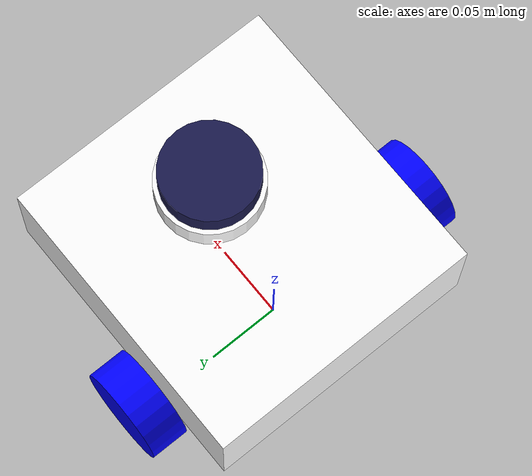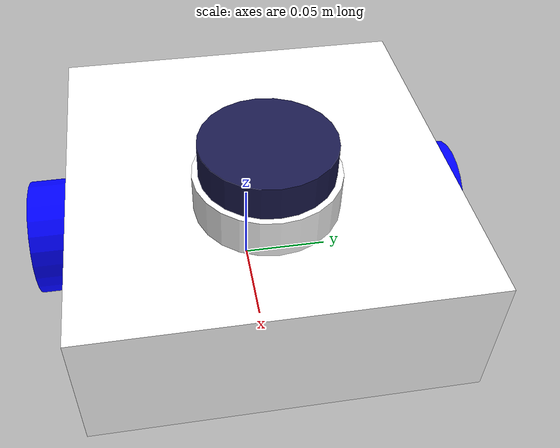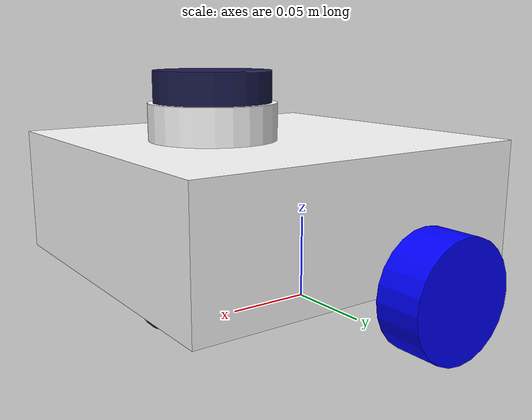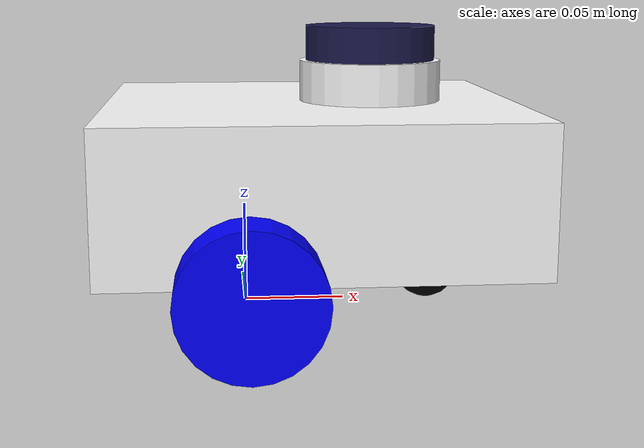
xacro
<?xml version="1.0"?>
<robot name="restaurant_robot"
       xmlns:xacro="http://www.ros.org/wiki/xacro"
       xmlns:gz="http://gazebosim.org/schema">

    <!-- Mechanical structure: chassis, wheels, caster -->
    <xacro:include filename="$(find restaurant_robot_description)/urdf/robot_core.xacro"/>

    <!-- Sensor frames: LiDAR, IMU -->
    <xacro:include filename="$(find restaurant_robot_description)/urdf/sensors.xacro"/>

    <!-- Gazebo Harmonic plugins: diff_drive, joint_states, lidar, imu -->
    <xacro:include filename="$(find restaurant_robot_description)/urdf/gazebo.xacro"/>

</robot>

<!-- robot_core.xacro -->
<robot xmlns:xacro="http://www.ros.org/wiki/xacro">

    <!-- Include inertia calculation macros -->
    <xacro:include filename="$(find restaurant_robot_description)/urdf/inertia_macros.xacro"/>

    <!-- Chassis dimensions -->
    <xacro:property name="chassis_length" value="0.20"/>
    <xacro:property name="chassis_width"  value="0.19"/>
    <xacro:property name="chassis_height" value="0.07"/>
    <xacro:property name="chassis_mass"   value="0.5"/>

    <!-- Drive wheel parameters -->
    <xacro:property name="wheel_radius"     value="0.0325"/>
    <xacro:property name="wheel_width"      value="0.026"/>
    <xacro:property name="wheel_mass"       value="0.1"/>
    <xacro:property name="wheel_separation" value="0.220"/>

    <!-- Caster wheel parameters -->
    <xacro:property name="caster_radius" value="0.0165"/>
    <xacro:property name="caster_mass"   value="0.1"/>

    <!-- ============================================================
         COLOR DEFINITIONS
         ============================================================ -->
    <material name="white">
        <color rgba="1 1 1 1"/>
    </material>
    <material name="black">
        <color rgba="0 0 0 1"/>
    </material>
    <material name="red">
        <color rgba="1 0 0 1"/>
    </material>
    <material name="green">
        <color rgba="0 1 0 1"/>
    </material>
    <material name="blue">
        <color rgba="0 0 1 1"/>
    </material>

    <link name="base_footprint">
        <inertial>
            <mass value="1e-5"/>
            <inertia ixx="1e-7" ixy="0" ixz="0" iyy="1e-7" iyz="0" izz="1e-7"/>
        </inertial>
    </link>

    <joint name="base_joint" type="fixed">
        <parent link="base_footprint"/>
        <child link="base_link"/>
        <origin xyz="0 0 ${wheel_radius}" rpy="0 0 0"/>
    </joint>
    <gazebo reference="base_joint">
        <preserveFixedJoint>true</preserveFixedJoint>
    </gazebo>

    <link name="base_link">
        <inertial>
            <mass value="1e-5"/>
            <inertia ixx="1e-7" ixy="0" ixz="0" iyy="1e-7" iyz="0" izz="1e-7"/>
        </inertial>
    </link>

    <joint name="chassis_joint" type="fixed">
        <parent link="base_link"/>
        <child link="chassis_link"/>
        <origin xyz="-0.067 0 0" rpy="0 0 0"/>
    </joint>
    <gazebo reference="chassis_joint">
        <preserveFixedJoint>true</preserveFixedJoint>
    </gazebo>

    <link name="chassis_link">
        <visual>
            <origin xyz="0.10 0 0.035"/>
            <geometry>
                <box size="${chassis_length} ${chassis_width} ${chassis_height}"/>
            </geometry>
            <material name="white"/>
        </visual>
        <collision>
            <origin xyz="0.10 0 0.035"/>
            <geometry>
                <box size="${chassis_length} ${chassis_width} ${chassis_height}"/>
            </geometry>
        </collision>
        <xacro:inertial_box mass="${chassis_mass}" x="${chassis_length}" y="${chassis_width}" z="${chassis_height}">
            <origin xyz="0.10 0 0.035" rpy="0 0 0"/>
        </xacro:inertial_box>
    </link>

    <!-- Gazebo visual material for chassis -->
    <gazebo reference="chassis_link">
        <material>
            <ambient>1 1 1 1</ambient>
            <diffuse>1 1 1 1</diffuse>
            <specular>1 1 1 1</specular>
        </material>
    </gazebo>

    <joint name="left_wheel_joint" type="continuous">
        <parent link="base_link"/>
        <child link="left_wheel"/>
        <origin xyz="0 ${wheel_separation/2} 0" rpy="-${pi/2} 0 0"/>
        <axis xyz="0 0 1"/>
        <dynamics damping="0.01" friction="0.1"/>
        <limit effort="5.0" velocity="20.0"/>
    </joint>

    <link name="left_wheel">
        <visual>
            <geometry>
                <cylinder radius="${wheel_radius}" length="${wheel_width}"/>
            </geometry>
            <material name="blue"/>
        </visual>
        <collision>
            <geometry>
                <cylinder radius="${wheel_radius}" length="${wheel_width}"/>
            </geometry>
        </collision>
        <xacro:inertial_cylinder mass="${wheel_mass}" radius="${wheel_radius}" length="${wheel_width}">
            <origin xyz="0 0 0" rpy="0 0 0"/>
        </xacro:inertial_cylinder>
    </link>

    <!-- Drive wheel surface friction (high grip for traction) -->
    <gazebo reference="left_wheel">
        <material>
            <ambient>0 0 1 1</ambient>
            <diffuse>0 0 1 1</diffuse>
        </material>
        <collision>
            <surface>
                <friction>
                    <ode>
                        <mu>1.0</mu>
                        <mu2>1.0</mu2>
                        <slip1>0.0</slip1>
                        <slip2>0.0</slip2>
                        <fdir1>0 0 1</fdir1>
                    </ode>
                </friction>
                <contact>
                    <ode>
                        <kp>1e6</kp>
                        <kd>100</kd>
                        <min_depth>0.001</min_depth>
                    </ode>
                </contact>
            </surface>
        </collision>
    </gazebo>

    <joint name="right_wheel_joint" type="continuous">
        <parent link="base_link"/>
        <child link="right_wheel"/>
        <origin xyz="0 -${wheel_separation/2} 0" rpy="${pi/2} 0 0"/>
        <axis xyz="0 0 -1"/>
        <dynamics damping="0.01" friction="0.1"/>
        <limit effort="5.0" velocity="20.0"/>
    </joint>

    <link name="right_wheel">
        <visual>
            <geometry>
                <cylinder radius="${wheel_radius}" length="${wheel_width}"/>
            </geometry>
            <material name="blue"/>
        </visual>
        <collision>
            <geometry>
                <cylinder radius="${wheel_radius}" length="${wheel_width}"/>
            </geometry>
        </collision>
        <xacro:inertial_cylinder mass="${wheel_mass}" radius="${wheel_radius}" length="${wheel_width}">
            <origin xyz="0 0 0" rpy="0 0 0"/>
        </xacro:inertial_cylinder>
    </link>

    <!-- Drive wheel surface friction (high grip for traction) -->
    <gazebo reference="right_wheel">
        <material>
            <ambient>0 0 1 1</ambient>
            <diffuse>0 0 1 1</diffuse>
        </material>
        <collision>
            <surface>
                <friction>
                    <ode>
                        <mu>1.0</mu>
                        <mu2>1.0</mu2>
                        <slip1>0.0</slip1>
                        <slip2>0.0</slip2>
                        <fdir1>0 0 1</fdir1>
                    </ode>
                </friction>
                <contact>
                    <ode>
                        <kp>1e6</kp>
                        <kd>100</kd>
                        <min_depth>0.001</min_depth>
                    </ode>
                </contact>
            </surface>
        </collision>
    </gazebo>

    <joint name="caster_joint" type="fixed">
        <parent link="chassis_link"/>
        <child link="caster_wheel"/>
        <origin xyz="0.160 0 -0.016"/>
    </joint>

    <link name="caster_wheel">
        <visual>
            <geometry>
                <sphere radius="${caster_radius}"/>
            </geometry>
            <material name="black"/>
        </visual>
        <collision>
            <geometry>
                <sphere radius="${caster_radius}"/>
            </geometry>
        </collision>
        <xacro:inertial_sphere mass="${caster_mass}" radius="${caster_radius}">
            <origin xyz="0 0 0" rpy="0 0 0"/>
        </xacro:inertial_sphere>
    </link>

    <!-- Caster wheel: near-zero friction for free rolling -->
    <gazebo reference="caster_wheel">
        <material>
            <ambient>0 0 0 1</ambient>
            <diffuse>0 0 0 1</diffuse>
            <specular>0.1 0.1 0.1 1</specular>
        </material>
        <collision>
            <surface>
                <friction>
                    <ode>
                        <mu>0.001</mu>
                        <mu2>0.001</mu2>
                        <slip1>1.0</slip1>
                        <slip2>1.0</slip2>
                    </ode>
                </friction>
                <contact>
                    <ode>
                        <kp>1e6</kp>
                        <kd>100</kd>
                        <min_depth>0.001</min_depth>
                    </ode>
                </contact>
            </surface>
        </collision>
    </gazebo>

</robot>

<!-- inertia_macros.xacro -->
<robot xmlns:xacro="http://www.ros.org/wiki/xacro">

    <xacro:macro name="inertial_box" params="mass x y z *origin">
        <inertial>
            <xacro:insert_block name="origin"/>
            <mass value="${mass}"/>
            <inertia ixx="${(1/12) * mass * (y*y + z*z)}" ixy="0.0" ixz="0.0"
                     iyy="${(1/12) * mass * (x*x + z*z)}" iyz="0.0"
                     izz="${(1/12) * mass * (x*x + y*y)}"/>
        </inertial>
    </xacro:macro>

    <xacro:macro name="inertial_cylinder" params="mass radius length *origin">
        <inertial>
            <xacro:insert_block name="origin"/>
            <mass value="${mass}"/>
            <inertia ixx="${(1/12) * mass * (3 * radius * radius + length * length)}" ixy="0.0" ixz="0.0"
                     iyy="${(1/12) * mass * (3 * radius * radius + length * length)}" iyz="0.0"
                     izz="${(1/2) * mass * radius * radius}"/>
        </inertial>
    </xacro:macro>

    <xacro:macro name="inertial_sphere" params="mass radius *origin">
        <inertial>
            <xacro:insert_block name="origin"/>
            <mass value="${mass}"/>
            <inertia ixx="${(2/5) * mass * radius * radius}" ixy="0.0" ixz="0.0"
                     iyy="${(2/5) * mass * radius * radius}" iyz="0.0"
                     izz="${(2/5) * mass * radius * radius}"/>
        </inertial>
    </xacro:macro>

</robot>

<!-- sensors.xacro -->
<robot xmlns:xacro="http://www.ros.org/wiki/xacro">

    <!-- LIDAR — on top of chassis -->
    <joint name="laser_joint" type="fixed">
        <parent link="chassis_link"/>
        <child link="laser_frame"/>
        <!-- Chassis top is at Z=0.07. LIDAR X=130mm from rear edge. -->
        <origin xyz="0.130 0 0.090" rpy="0 0 0"/>
    </joint>
    <gazebo reference="laser_joint">
        <preserveFixedJoint>true</preserveFixedJoint>
    </gazebo>
    <link name="laser_frame">
        <visual>
            <origin xyz="0 0 -0.010" rpy="0 0 0"/>
            <geometry><cylinder radius="0.035" length="0.020"/></geometry>
            <material name="white"/>
        </visual>
        <visual>
            <origin xyz="0 0 0.008" rpy="0 0 0"/>
            <geometry><cylinder radius="0.032" length="0.018"/></geometry>
            <material name=""><color rgba="0.1 0.1 0.3 1.0"/></material>
        </visual>
        <collision>
            <geometry><cylinder radius="0.035" length="0.040"/></geometry>
        </collision>
        <inertial>
            <mass value="0.17"/>
            <inertia ixx="7.5e-5" ixy="0" ixz="0" iyy="7.5e-5" iyz="0" izz="1.04e-4"/>
        </inertial>
    </link>
    <gazebo reference="laser_frame">
        <material>
            <ambient>0.1 0.1 0.3 1</ambient>
            <diffuse>0.1 0.1 0.3 1</diffuse>
        </material>
    </gazebo>

    <!-- IMU — inside chassis -->
    <joint name="imu_joint" type="fixed">
        <parent link="chassis_link"/>
        <child link="imu_link"/>
        <!-- Placed safely in the center of the 0.07m height chassis -->
        <origin xyz="0.10 0 0.035" rpy="0 0 0"/>
    </joint>
    <gazebo reference="imu_joint">
        <preserveFixedJoint>true</preserveFixedJoint>
    </gazebo>
    <link name="imu_link">
        <visual>
            <geometry><box size="0.020 0.020 0.005"/></geometry>
            <material name=""><color rgba="0.0 0.5 0.0 1.0"/></material>
        </visual>
        <inertial>
            <mass value="0.01"/>
            <inertia ixx="1e-7" ixy="0" ixz="0" iyy="1e-7" iyz="0" izz="1e-7"/>
        </inertial>
    </link>

</robot>
